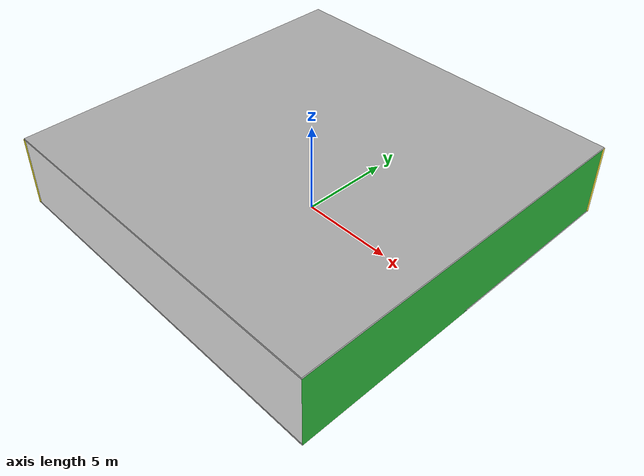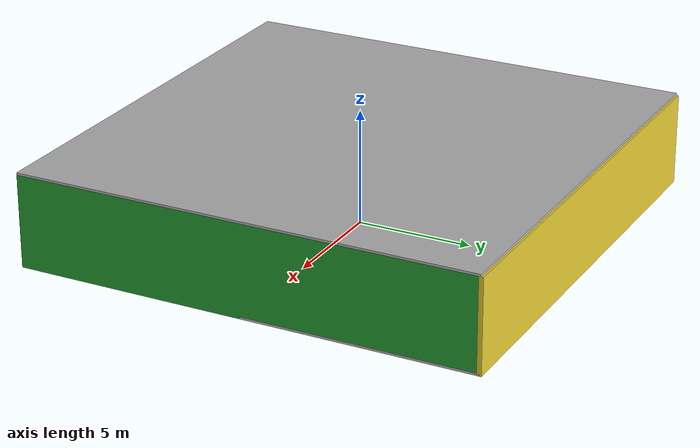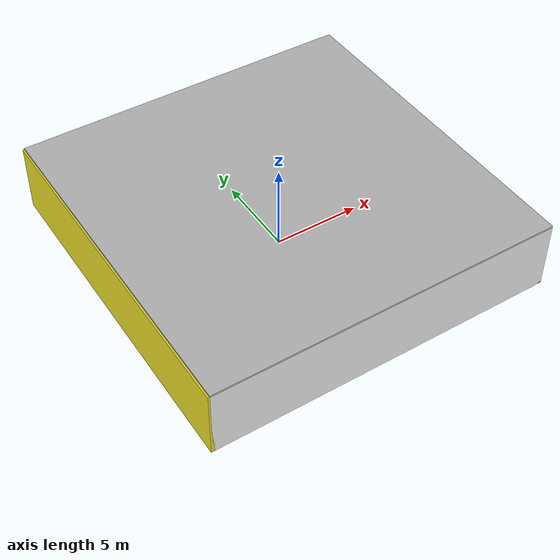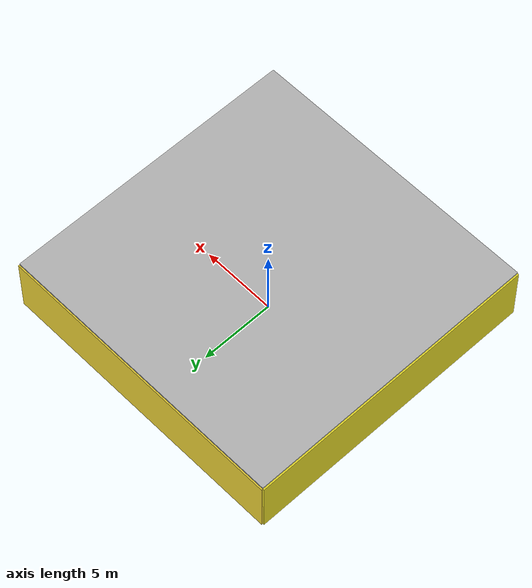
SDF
<sdf version="1.4">
 <world name="default">
  <physics type="ode">
   <max_step_size>0.001</max_step_size>
   <real_time_factor>1</real_time_factor>
   <real_time_update_rate>1000</real_time_update_rate>
   <gravity>0 0 -9.8</gravity>
  </physics>
  <scene><ambient>0.4 0.4 0.4 1</ambient><background>0.7 0.7 0.7 1</background><shadows>1</shadows></scene>
  <model name="Surrounding">
   <static>1</static>
   <link name="Ceiling">
    <collision name="Ceiling_Collision"><geometry><box><size>20 20 0.1</size></box></geometry></collision>
    <visual name="Ceiling_Visual">
     <geometry><box><size>20 20 0.1</size></box></geometry>
     <material>
      <script><uri>file://media/materials/scripts/gazebo.material</uri><name>Gazebo/LightOff</name></script>
     </material>
    </visual>
    <pose>0 0 4.05 0 0 0</pose>
   </link>
   <link name="Wall_South">
    <collision name="Wall_South_Collision">
     <geometry><box><size>20 0 4</size></box></geometry>
     <pose>0 0 2 0 -0 0</pose>
    </collision>
    <visual name="Wall_South_Visual">
     <pose>0 0 2 0 -0 0</pose>
     <geometry><box><size>20 0 4</size></box></geometry>
     <material>
      <script><uri>file://media/materials/scripts/gazebo.material</uri><name>Gazebo/WhiteGlow</name></script>
     </material>
    </visual>
    <velocity_decay><linear>0</linear><angular>0</angular></velocity_decay>
    <pose>0 -10 0 0 -0 0</pose>
   </link>
   <link name="Wall_East">
    <collision name="Wall_21_Collision">
     <geometry><box><size>20 0 4</size></box></geometry>
     <pose>0 0 2 0 -0 0</pose>
    </collision>
    <visual name="Wall_21_Visual">
     <pose>0 0 2 0 -0 0</pose>
     <geometry><box><size>20 0 4</size></box></geometry>
     <material>
      <script><uri>file://media/materials/scripts/gazebo.material</uri><name>Gazebo/Green</name></script>
     </material>
    </visual>
    <velocity_decay><linear>0</linear><angular>0</angular></velocity_decay>
    <pose>10 0 0 0 -0 1.5708</pose>
   </link>
   <link name="Wall_North">
    <collision name="Wall_22_Collision">
     <geometry><box><size>20 0.2 4</size></box></geometry>
     <pose>0 0 2 0 -0 0</pose>
    </collision>
    <visual name="Wall_22_Visual">
     <pose>0 0 2 0 -0 0</pose>
     <geometry><box><size>20 0.2 4</size></box></geometry>
     <material>
      <script><uri>file://media/materials/scripts/gazebo.material</uri><name>Gazebo/ZincYellow</name></script>
     </material>
    </visual>
    <velocity_decay><linear>0</linear><angular>0</angular></velocity_decay>
    <pose>0 10 0 0 -0 0</pose>
   </link>
   <link name="Wall_West">
    <collision name="Wall_23_Collision">
     <geometry><box><size>20 0.2 4</size></box></geometry>
     <pose>0 0 2 0 -0 0</pose>
    </collision>
    <visual name="Wall_23_Visual">
     <pose>0 0 2 0 -0 0</pose>
     <geometry><box><size>20 0.2 4</size></box></geometry>
     <material>
      <script><uri>file://media/materials/scripts/gazebo.material</uri><name>Gazebo/Yellow</name></script>
     </material>
    </visual>
    <velocity_decay><linear>0</linear><angular>0</angular></velocity_decay>
    <pose>-10 0 0 0 0 -1.5708</pose>
   </link>
   <link name="Ground_link">
    <collision name="collision">
     <pose>0 0 .05 0 -0 0</pose>
     <geometry><box><size>20 20 0.1</size></box></geometry>
    </collision>
    <visual name="visual">
     <pose>0 0 .05 0 -0 0</pose>
     <geometry><box><size>20 20 0.1</size></box></geometry>
     <material>
      <script><uri>file://media/materials/scripts/gazebo.material</uri><name>Gazebo/PioneerBody</name></script>
     </material>
    </visual>
   </link>
   <static>1</static>
  </model>
  <spherical_coordinates>
   <surface_model>EARTH_WGS84</surface_model>
   <latitude_deg>0</latitude_deg>
   <longitude_deg>0</longitude_deg>
   <elevation>0</elevation>
   <heading_deg>0</heading_deg>
  </spherical_coordinates>
  <light name="lightball_0" type="diffuse">
   <diffuse>0.8 0.8 0.8 1</diffuse>
   <specular>0.2 0.2 0.2 1</specular>
   <attenuation>
    <range>100</range>
    <constant>0.7</constant>
    <linear>0.01</linear>
    <quadratic>0.001</quadratic>
   </attenuation>
   <direction>-0.5 0.1 -0.9</direction>
   <pose>-0.306716825084 -4.06637586602 3.39616827636 0 0 0</pose>
  </light>
  <light name="lightball_1" type="diffuse">
   <diffuse>0.8 0.8 0.8 1</diffuse>
   <specular>0.2 0.2 0.2 1</specular>
   <attenuation>
    <range>100</range>
    <constant>0.7</constant>
    <linear>0.01</linear>
    <quadratic>0.001</quadratic>
   </attenuation>
   <direction>-0.5 0.1 -0.9</direction>
   <pose>4.40841083202 -9.54937165958 3.65301756172 0 0 0</pose>
  </light>
  <light name="lightball_2" type="diffuse">
   <diffuse>0.8 0.8 0.8 1</diffuse>
   <specular>0.2 0.2 0.2 1</specular>
   <attenuation>
    <range>100</range>
    <constant>0.7</constant>
    <linear>0.01</linear>
    <quadratic>0.001</quadratic>
   </attenuation>
   <direction>-0.5 0.1 -0.9</direction>
   <pose>8.21969336545 5.47219254708 3.66019337716 0 0 0</pose>
  </light>
  <light name="lightball_3" type="diffuse">
   <diffuse>0.8 0.8 0.8 1</diffuse>
   <specular>0.2 0.2 0.2 1</specular>
   <attenuation>
    <range>100</range>
    <constant>0.7</constant>
    <linear>0.01</linear>
    <quadratic>0.001</quadratic>
   </attenuation>
   <direction>-0.5 0.1 -0.9</direction>
   <pose>1.03163249046 -7.00103436084 1.55827421639 0 0 0</pose>
  </light>
  <light name="lightball_4" type="diffuse">
   <diffuse>0.8 0.8 0.8 1</diffuse>
   <specular>0.2 0.2 0.2 1</specular>
   <attenuation>
    <range>100</range>
    <constant>0.7</constant>
    <linear>0.01</linear>
    <quadratic>0.001</quadratic>
   </attenuation>
   <direction>-0.5 0.1 -0.9</direction>
   <pose>2.26800474062 -5.66130829333 3.39077485 0 0 0</pose>
  </light>
  <light name="lightball_5" type="diffuse">
   <diffuse>0.8 0.8 0.8 1</diffuse>
   <specular>0.2 0.2 0.2 1</specular>
   <attenuation>
    <range>100</range>
    <constant>0.7</constant>
    <linear>0.01</linear>
    <quadratic>0.001</quadratic>
   </attenuation>
   <direction>-0.5 0.1 -0.9</direction>
   <pose>4.35127220853 -5.20258540531 1.46264870077 0 0 0</pose>
  </light>
  <light name="lightball_6" type="diffuse">
   <diffuse>0.8 0.8 0.8 1</diffuse>
   <specular>0.2 0.2 0.2 1</specular>
   <attenuation>
    <range>100</range>
    <constant>0.7</constant>
    <linear>0.01</linear>
    <quadratic>0.001</quadratic>
   </attenuation>
   <direction>-0.5 0.1 -0.9</direction>
   <pose>-7.87009802199 3.88874675614 0.659150653962 0 0 0</pose>
  </light>
  <light name="lightball_7" type="diffuse">
   <diffuse>0.8 0.8 0.8 1</diffuse>
   <specular>0.2 0.2 0.2 1</specular>
   <attenuation>
    <range>100</range>
    <constant>0.7</constant>
    <linear>0.01</linear>
    <quadratic>0.001</quadratic>
   </attenuation>
   <direction>-0.5 0.1 -0.9</direction>
   <pose>-8.71011801914 -3.80047807234 2.64720433763 0 0 0</pose>
  </light>
  <include><uri>model://cabinet</uri><pose>-7.41458403808 1.07289845548 0 0 0 0.466918759039</pose></include>
  <include><uri>model://table</uri><pose>-7.79546175504 5.28276208785 0 0 0 2.20787235972</pose></include>
  <include>
   <uri>model://construction_cone</uri>
   <pose>-2.0325002636 -4.52306913024 0 0 0 1.7644133415</pose>
  </include>
  <include>
   <uri>model://robocup_3Dsim_goal</uri>
   <pose>2.22324824861 -5.32115312135 0 0 0 3.09916631705</pose>
  </include>
  <include><uri>model://cabinet</uri><pose>1.58067428729 -1.61782438209 0 0 0 2.96734420515</pose></include>
  <include>
   <uri>model://textured_shapes</uri>
   <pose>2.16809076288 7.86100122696 0 0 0 1.23930410822</pose>
  </include>
  <include><uri>model://table</uri><pose>5.13888680078 -6.57620387681 0 0 0 2.55801379769</pose></include>
  <include>
   <uri>model://textured_shapes</uri>
   <pose>5.50215931903 -3.96890824396 0 0 0 2.54152459979</pose>
  </include>
  <include>
   <uri>model://textured_shapes</uri>
   <pose>4.54420276544 -2.18985121697 0 0 0 0.339987269566</pose>
  </include>
  <include>
   <uri>model://construction_cone</uri>
   <pose>6.40431158509 -6.51560243535 0 0 0 1.51948263275</pose>
  </include>
 </world>
</sdf>

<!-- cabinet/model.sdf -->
<sdf version="1.5">
  <model name="cabinet">
    <static>true</static>
    <link name="cabinet_bottom_plate">
      <inertial>
        <pose>0 0 -1 0 0 0</pose>
        <inertia>
          <ixx>2.050000</ixx>
          <ixy>0</ixy>
          <ixz>0</ixz>
          <iyy>2.050000</iyy>
          <iyz>0</iyz>
          <izz>2.050000</izz>
        </inertia>
        <mass>25.000000</mass>
      </inertial>
      <collision name="cabinet_bottom_plate_geom">
        <pose>0 0 0.010000 0 0 0</pose>
        <geometry>
          <box>
            <size>0.450000 0.450000 0.020000</size>
          </box>
        </geometry>
      </collision>
      <visual name="cabinet_bottom_plate_geom_visual">
        <pose>0 0 0.010000 0 0 0</pose>
        <geometry>
          <box>
            <size>0.450000 0.450000 0.020000</size>
          </box>
        </geometry>
        <material>
          <script>
            <uri>model://media/materials/scripts/gazebo.material</uri>
            <name>Gazebo/Wood</name>
          </script>
        </material>
      </visual>
      <collision name="cabinet_bottom_plate_geom_cabinet_back_plate">
        <pose>0.235000 0 0.510000 0 0 0</pose>
        <geometry>
          <box>
            <size>0.020000 0.450000 1.020000</size>
          </box>
        </geometry>
      </collision>
      <visual name="cabinet_bottom_plate_geom_cabinet_back_plate_visual">
        <pose>0.235000 0 0.510000 0 0 0</pose>
        <geometry>
          <box>
            <size>0.020000 0.450000 1.020000</size>
          </box>
        </geometry>
        <material>
          <script>
            <uri>model://media/materials/scripts/gazebo.material</uri>
            <name>Gazebo/Wood</name>
          </script>
        </material>
      </visual>
      <collision name="cabinet_bottom_plate_geom_cabinet_left_plate">
        <pose>0 0.235000 0.510000 0 0 0</pose>
        <geometry>
          <box>
            <size>0.450000 0.020000 1.020000</size>
          </box>
        </geometry>
      </collision>
      <visual name="cabinet_bottom_plate_geom_cabinet_left_plate_visual">
        <pose>0 0.235000 0.510000 0 0 0</pose>
        <geometry>
          <box>
            <size>0.450000 0.020000 1.020000</size>
          </box>
        </geometry>
        <material>
          <script>
            <uri>model://media/materials/scripts/gazebo.material</uri>
            <name>Gazebo/Wood</name>
          </script>
        </material>
      </visual>
      <collision name="cabinet_bottom_plate_geom_cabinet_middle_plate">
        <pose>0 0 0.510000 0 0 0</pose>
        <geometry>
          <box>
            <size>0.450000 0.450000 0.020000</size>
          </box>
        </geometry>
      </collision>
      <visual name="cabinet_bottom_plate_geom_cabinet_middle_plate_visual">
        <pose>0 0 0.510000 0 0 0</pose>
        <geometry>
          <box>
            <size>0.450000 0.450000 0.020000</size>
          </box>
        </geometry>
        <material>
          <script>
            <uri>model://media/materials/scripts/gazebo.material</uri>
            <name>Gazebo/Wood</name>
          </script>
        </material>
      </visual>
      <collision name="cabinet_bottom_plate_geom_cabinet_right_plate">
        <pose>0 -0.235000 0.510000 0 0 0</pose>
        <geometry>
          <box>
            <size>0.450000 0.020000 1.020000</size>
          </box>
        </geometry>
      </collision>
      <visual name="cabinet_bottom_plate_geom_cabinet_right_plate_visual">
        <pose>0 -0.235000 0.510000 0 0 0</pose>
        <geometry>
          <box>
            <size>0.450000 0.020000 1.020000</size>
          </box>
        </geometry>
        <material>
          <script>
            <uri>model://media/materials/scripts/gazebo.material</uri>
            <name>Gazebo/Wood</name>
          </script>
        </material>
      </visual>
      <collision name="cabinet_bottom_plate_geom_cabinet_top_plate">
        <pose>0 0 1.010000 0 0 0</pose>
        <geometry>
          <box>
            <size>0.450000 0.450000 0.020000</size>
          </box>
        </geometry>
      </collision>
      <visual name="cabinet_bottom_plate_geom_cabinet_top_plate_visual">
        <pose>0 0 1.010000 0 0 0</pose>
        <geometry>
          <box>
            <size>0.450000 0.450000 0.020000</size>
          </box>
        </geometry>
        <material>
          <script>
            <uri>model://media/materials/scripts/gazebo.material</uri>
            <name>Gazebo/Wood</name>
          </script>
        </material>
      </visual>
    </link>
  </model>
</sdf>

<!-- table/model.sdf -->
<sdf version="1.5">
  <model name="table">
    <static>true</static>
    <link name="link">
      <collision name="surface">
        <pose>0 0 1.0 0 0 0</pose>
        <geometry>
          <box>
            <size>1.5 0.8 0.03</size>
          </box>
        </geometry>
        <surface>
          <friction>
            <ode>
              <mu>0.6</mu>
              <mu2>0.6</mu2>
            </ode>
          </friction>
        </surface>
      </collision>
      <visual name="visual1">
        <pose>0 0 1.0 0 0 0</pose>
        <geometry>
          <box>
            <size>1.5 0.8 0.03</size>
          </box>
        </geometry>
        <material>
          <script>
            <uri>model://media/materials/scripts/gazebo.material</uri>
            <name>Gazebo/Wood</name>
          </script>
        </material>
      </visual>
      <collision name="front_left_leg">
        <pose>0.68 0.38 0.5 0 0 0</pose>
        <geometry>
          <cylinder>
            <radius>0.02</radius>
            <length>1.0</length>
          </cylinder>
        </geometry>
      </collision>
      <visual name="front_left_leg">
        <pose>0.68 0.38 0.5 0 0 0</pose>
        <geometry>
          <cylinder>
            <radius>0.02</radius>
            <length>1.0</length>
          </cylinder>
        </geometry>
        <material>
          <script>
            <uri>model://media/materials/scripts/gazebo.material</uri>
            <name>Gazebo/Grey</name>
          </script>
        </material>
      </visual>
      <collision name="front_right_leg">
        <pose>0.68 -0.38 0.5 0 0 0</pose>
        <geometry>
          <cylinder>
            <radius>0.02</radius>
            <length>1.0</length>
          </cylinder>
        </geometry>
      </collision>
      <visual name="front_right_leg">
        <pose>0.68 -0.38 0.5 0 0 0</pose>
        <geometry>
          <cylinder>
            <radius>0.02</radius>
            <length>1.0</length>
          </cylinder>
        </geometry>
        <material>
          <script>
            <uri>model://media/materials/scripts/gazebo.material</uri>
            <name>Gazebo/Grey</name>
          </script>
        </material>
      </visual>
      <collision name="back_right_leg">
        <pose>-0.68 -0.38 0.5 0 0 0</pose>
        <geometry>
          <cylinder>
            <radius>0.02</radius>
            <length>1.0</length>
          </cylinder>
        </geometry>
      </collision>
      <visual name="back_right_leg">
        <pose>-0.68 -0.38 0.5 0 0 0</pose>
        <geometry>
          <cylinder>
            <radius>0.02</radius>
            <length>1.0</length>
          </cylinder>
        </geometry>
        <material>
          <script>
            <uri>model://media/materials/scripts/gazebo.material</uri>
            <name>Gazebo/Grey</name>
          </script>
        </material>
      </visual>
      <collision name="back_left_leg">
        <pose>-0.68 0.38 0.5 0 0 0</pose>
        <geometry>
          <cylinder>
            <radius>0.02</radius>
            <length>1.0</length>
          </cylinder>
        </geometry>
      </collision>
      <visual name="back_left_leg">
        <pose>-0.68 0.38 0.5 0 0 0</pose>
        <geometry>
          <cylinder>
            <radius>0.02</radius>
            <length>1.0</length>
          </cylinder>
        </geometry>
        <material>
          <script>
            <uri>model://media/materials/scripts/gazebo.material</uri>
            <name>Gazebo/Grey</name>
          </script>
        </material>
      </visual>
    </link>
  </model>
</sdf>

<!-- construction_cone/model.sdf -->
<sdf version="1.5">
  <model name="Construction Cone">
    <link name="link">
      <collision name="collision">
        <geometry>
          <mesh>
            <scale>10 10 10</scale>
            <uri>file://isr-testbed/construction_cone/meshes/construction_cone.dae</uri>
          </mesh>
        </geometry>
      </collision>
      <visual name="visual">
        <geometry>
          <mesh>
            <scale>10 10 10</scale>
            <uri>file://isr-testbed/construction_cone/meshes/construction_cone.dae</uri>
          </mesh>
        </geometry>
      </visual>
    </link>
  </model>
</sdf>

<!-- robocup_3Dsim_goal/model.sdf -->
<sdf version="1.5">
  <model name="robocup_3d_goal">
    <static>true</static>
    <link name="left_post">
      <pose>0 1.05 0.45 0 0 0</pose>
      <collision name="collision">
        <geometry>
          <cylinder>
            <radius>0.05</radius>
            <length>0.9</length>
          </cylinder>
        </geometry>
      </collision>
      <visual name="visual">
        <geometry>
          <cylinder>
            <radius>0.05</radius>
            <length>0.9</length>
          </cylinder>
        </geometry>
        <material>
          <script>
            <uri>file://media/materials/scripts/gazebo.material</uri>
            <name>Gazebo/ZincYellow</name>
          </script>
        </material>
      </visual>
    </link>
    <link name="left_support_horiz_lower">
      <pose>0.30 1.05 0.01 0 0 0</pose>
      <collision name="collision">
        <geometry>
          <box>
            <size>0.50 0.02 0.02</size>
          </box>
        </geometry>
      </collision>
      <visual name="visual">
        <geometry>
          <box>
            <size>0.50 0.02 0.02</size>
          </box>
        </geometry>
        <material>
          <script>
            <uri>file://media/materials/scripts/gazebo.material</uri>
            <name>Gazebo/White</name>
          </script>
        </material>
      </visual>
    </link>
    <link name="left_support_horiz_upper">
      <pose>0.30 1.05 0.79 0 0 0</pose>
      <collision name="collision">
        <geometry>
          <box>
            <size>0.50 0.02 0.02</size>
          </box>
        </geometry>
      </collision>
      <visual name="visual">
        <geometry>
          <box>
            <size>0.50 0.02 0.02</size>
          </box>
        </geometry>
        <material>
          <script>
            <uri>file://media/materials/scripts/gazebo.material</uri>
            <name>Gazebo/White</name>
          </script>
        </material>
      </visual>
    </link>
    <link name="left_support_vertical">
      <pose>0.56 1.05 0.4 0 1.5708 0</pose>
      <collision name="collision">
        <geometry>
          <box>
            <size>0.80 0.02 0.02</size>
          </box>
        </geometry>
      </collision>
      <visual name="visual">
        <geometry>
          <box>
            <size>0.80 0.02 0.02</size>
          </box>
        </geometry>
        <material>
          <script>
            <uri>file://media/materials/scripts/gazebo.material</uri>
            <name>Gazebo/White</name>
          </script>
        </material>
      </visual>
    </link>
    <link name="right_support_horiz_lower">
      <pose>0.30 -1.05 0.01 0 0 0</pose>
      <collision name="collision">
        <geometry>
          <box>
            <size>0.50 0.02 0.02</size>
          </box>
        </geometry>
      </collision>
      <visual name="visual">
        <geometry>
          <box>
            <size>0.50 0.02 0.02</size>
          </box>
        </geometry>
        <material>
          <script>
            <uri>file://media/materials/scripts/gazebo.material</uri>
            <name>Gazebo/White</name>
          </script>
        </material>
      </visual>
    </link>
    <link name="right_support_horiz_upper">
      <pose>0.30 -1.05 0.79 0 0 0</pose>
      <collision name="collision">
        <geometry>
          <box>
            <size>0.50 0.02 0.02</size>
          </box>
        </geometry>
      </collision>
      <visual name="visual">
        <geometry>
          <box>
            <size>0.50 0.02 0.02</size>
          </box>
        </geometry>
        <material>
          <script>
            <uri>file://media/materials/scripts/gazebo.material</uri>
            <name>Gazebo/White</name>
          </script>
        </material>
      </visual>
    </link>
    <link name="right_support_vertical">
      <pose>0.56 -1.05 0.4 0 1.5708 0</pose>
      <collision name="collision">
        <geometry>
          <box>
            <size>0.80 0.02 0.02</size>
          </box>
        </geometry>
      </collision>
      <visual name="visual">
        <geometry>
          <box>
            <size>0.80 0.02 0.02</size>
          </box>
        </geometry>
        <material>
          <script>
            <uri>file://media/materials/scripts/gazebo.material</uri>
            <name>Gazebo/White</name>
          </script>
        </material>
      </visual>
    </link>
    <link name="center_support_horiz_lower">
      <pose>0.56 0 0.01 0 1.5708 0</pose>
      <collision name="collision">
        <geometry>
          <box>
            <size>0.02 2.08 0.02</size>
          </box>
        </geometry>
      </collision>
      <visual name="visual">
        <geometry>
          <box>
            <size>0.02 2.08 0.02</size>
          </box>
        </geometry>
        <material>
          <script>
            <uri>file://media/materials/scripts/gazebo.material</uri>
            <name>Gazebo/White</name>
          </script>
        </material>
      </visual>
    </link>
    <link name="center_support_horiz_upper">
      <pose>0.56 0 0.79 0 1.5708 0</pose>
      <collision name="collision">
        <geometry>
          <box>
            <size>0.02 2.08 0.02</size>
          </box>
        </geometry>
      </collision>
      <visual name="visual">
        <geometry>
          <box>
            <size>0.02 2.08 0.02</size>
          </box>
        </geometry>
        <material>
          <script>
            <uri>file://media/materials/scripts/gazebo.material</uri>
            <name>Gazebo/White</name>
          </script>
        </material>
      </visual>
    </link>
    <link name="right_post">
      <pose>0 -1.05 0.45 0 0 0</pose>
      <collision name="collision">
        <geometry>
          <cylinder>
            <radius>0.05</radius>
            <length>0.9</length>
          </cylinder>
        </geometry>
      </collision>
      <visual name="visual">
        <geometry>
          <cylinder>
            <radius>0.05</radius>
            <length>0.9</length>
          </cylinder>
        </geometry>
        <material>
          <script>
            <uri>file://media/materials/scripts/gazebo.material</uri>
            <name>Gazebo/ZincYellow</name>
          </script>
        </material>
      </visual>
    </link>
    <link name="crossbar">
      <pose>0 0 0.85 1.57 1.57 0</pose>
      <collision name="collision">
        <geometry>
          <cylinder>
            <radius>0.05</radius>
            <length>2.0</length>
          </cylinder>
        </geometry>
      </collision>
      <visual name="visual">
        <geometry>
          <cylinder>
            <radius>0.05</radius>
            <length>2.0</length>
          </cylinder>
        </geometry>
        <material>
          <script>
            <uri>file://media/materials/scripts/gazebo.material</uri>
            <name>Gazebo/ZincYellow</name>
          </script>
        </material>
      </visual>
    </link>
    <link name="center_net">
      <pose>0.56 0 0.40 0 0 0</pose>
      <collision name="collision">
        <geometry>
          <box>
            <size>0.01 2.1 0.80</size>
          </box>
        </geometry>
      </collision>
      <visual name="visual">
        <geometry>
          <box>
            <size>0.01 2.1 0.80</size>
          </box>
        </geometry>
        <material>
          <script>
            <uri>model://../model_source/models/robocup09_spl_field/materials/scripts/</uri>
            <uri>model://../model_source/models/robocup09_spl_field/materials/textures/</uri>
            <name>RoboCup/Net</name>
          </script>
        </material>
      </visual>
    </link>
    <link name="left_net">
      <pose>0.30 1.05 0.40 0 0 0</pose>
      <collision name="collision">
        <geometry>
          <box>
            <size>0.50 0.01 0.76</size>
          </box>
        </geometry>
      </collision>
      <visual name="visual">
        <geometry>
          <box>
            <size>0.50 0.01 0.76</size>
          </box>
        </geometry>
        <material>
          <script>
            <uri>model://../model_source/models/robocup09_spl_field/materials/scripts/</uri>
            <uri>model://../model_source/models/robocup09_spl_field/materials/textures/</uri>
            <name>RoboCup/Net</name>
          </script>
        </material>
      </visual>
    </link>
    <link name="right_net">
      <pose>0.30 -1.05 0.40 0 0 0</pose>
      <collision name="collision">
        <geometry>
          <box>
            <size>0.50 0.01 0.76</size>
          </box>
        </geometry>
      </collision>
      <visual name="visual">
        <geometry>
          <box>
            <size>0.50 0.01 0.76</size>
          </box>
        </geometry>
        <material>
          <script>
            <uri>model://../model_source/models/robocup09_spl_field/materials/scripts/</uri>
            <uri>model://../model_source/models/robocup09_spl_field/materials/textures/</uri>
            <name>RoboCup/Net</name>
          </script>
        </material>
      </visual>
    </link>
  </model>
</sdf>

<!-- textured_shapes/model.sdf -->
<sdf version="1.6">
  <model name="textured_shapes">
    <pose>0 0 0.5 0 0 0</pose>
    <link name="box">
      <pose>0 -1.5 0 0 0 0</pose>
      <collision name="collision">
        <geometry>
          <box>
            <size>1 1 1</size>
          </box>
        </geometry>
      </collision>
      <visual name="visual">
        <geometry>
          <box>
            <size>1 1 1</size>
          </box>
        </geometry>
        <material>
          <script>
            <uri>model://../model_source/models/textured_shapes/materials/scripts</uri>
            <uri>model://../model_source/models/textured_shapes/materials/textures</uri>
            <name>TexturedShape/Squares</name>
          </script>
        </material>
      </visual>
    </link>
    <link name="sphere">
      <collision name="collision">
        <geometry>
          <sphere>
            <radius>0.5</radius>
          </sphere>
        </geometry>
      </collision>
      <visual name="visual">
        <geometry>
          <sphere>
            <radius>0.5</radius>
          </sphere>
        </geometry>
        <material>
          <script>
            <uri>model://../model_source/models/textured_shapes/materials/scripts</uri>
            <uri>model://../model_source/models/textured_shapes/materials/textures</uri>
            <name>TexturedShape/Squares</name>
          </script>
        </material>
      </visual>
    </link>
    <link name="cylinder">
      <pose>0 1.5 0 0 0 0</pose>
      <collision name="collision">
        <geometry>
          <cylinder>
            <radius>0.5</radius>
            <length>1</length>
          </cylinder>
        </geometry>
      </collision>
      <visual name="visual">
        <geometry>
          <cylinder>
            <radius>0.5</radius>
            <length>1</length>
          </cylinder>
        </geometry>
        <material>
          <script>
            <uri>model://../model_source/models/textured_shapes/materials/scripts</uri>
            <uri>model://../model_source/models/textured_shapes/materials/textures</uri>
            <name>TexturedShape/Squares</name>
          </script>
        </material>
      </visual>
    </link>
  </model>
</sdf>
